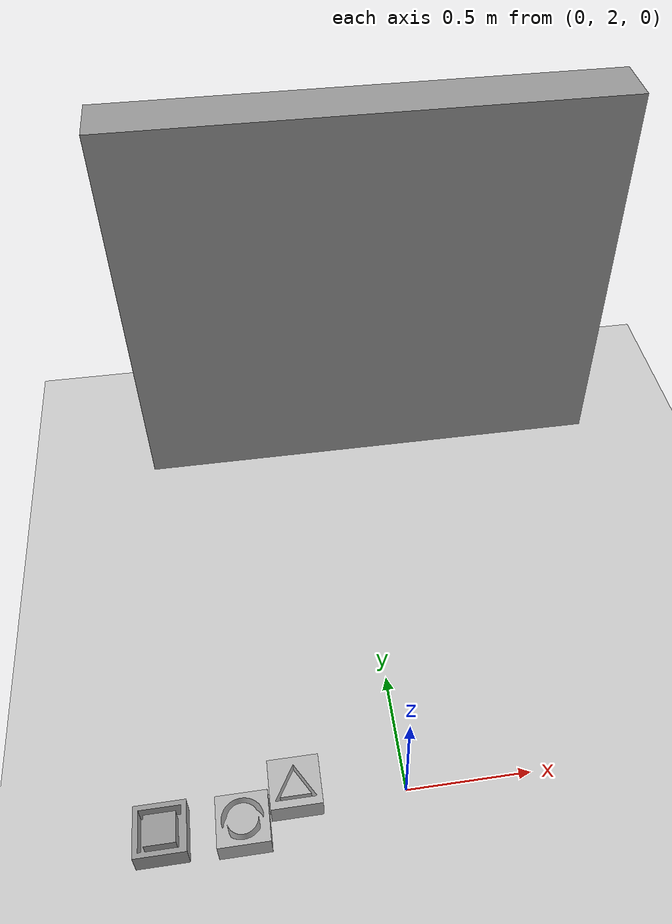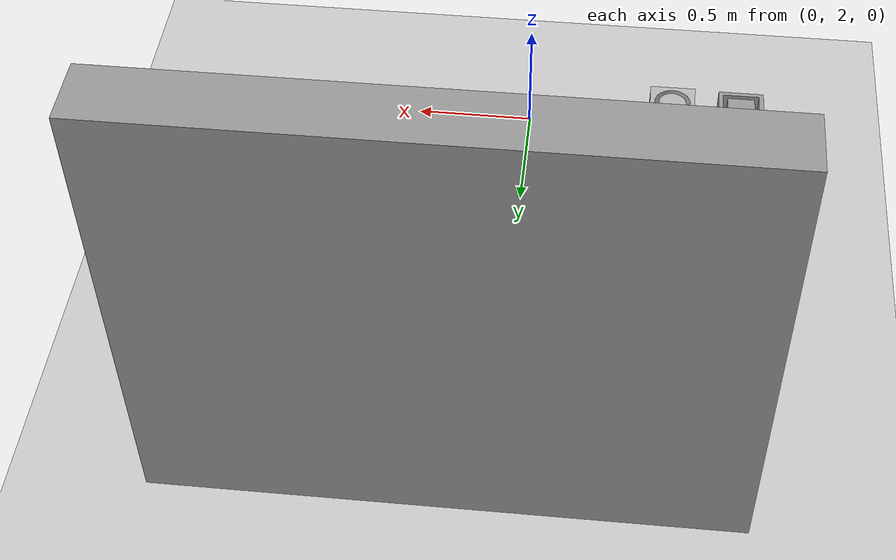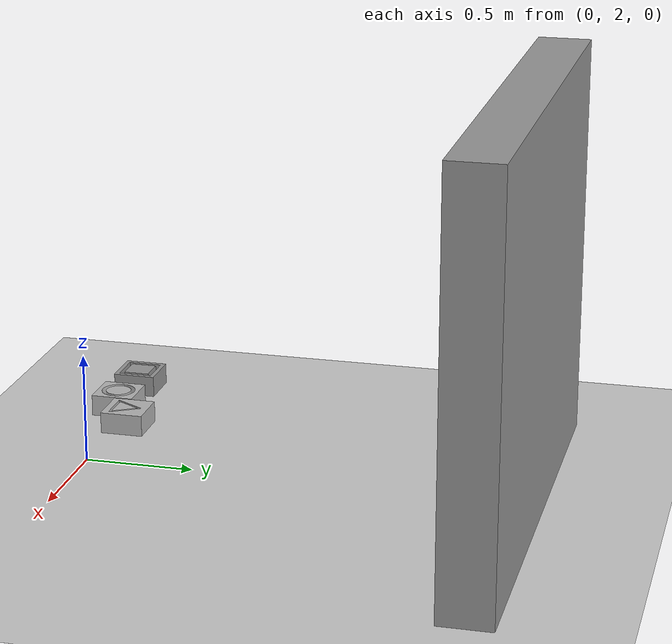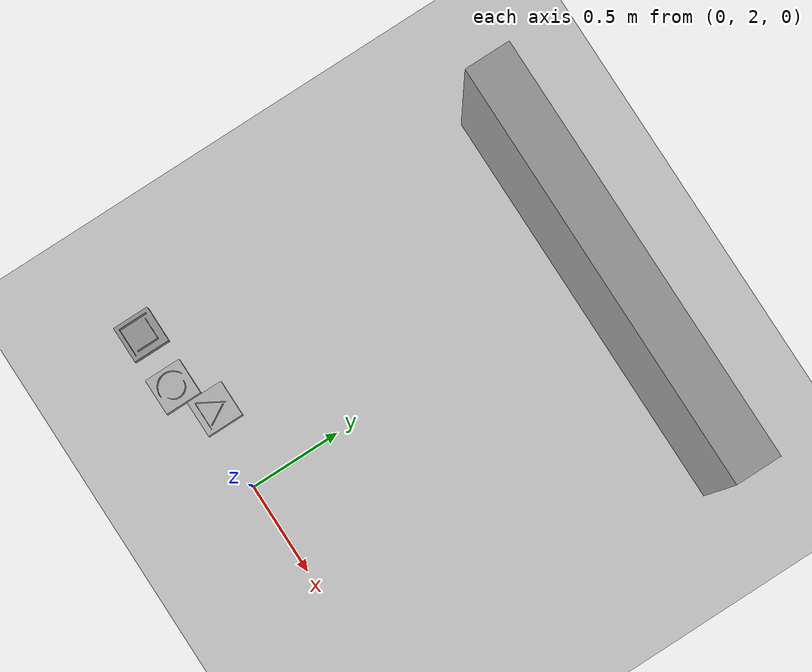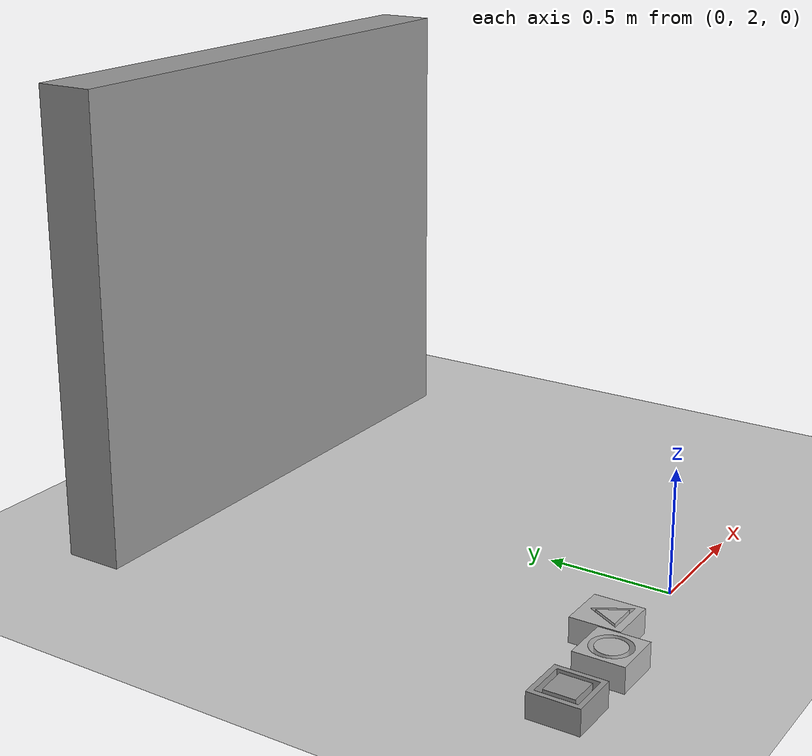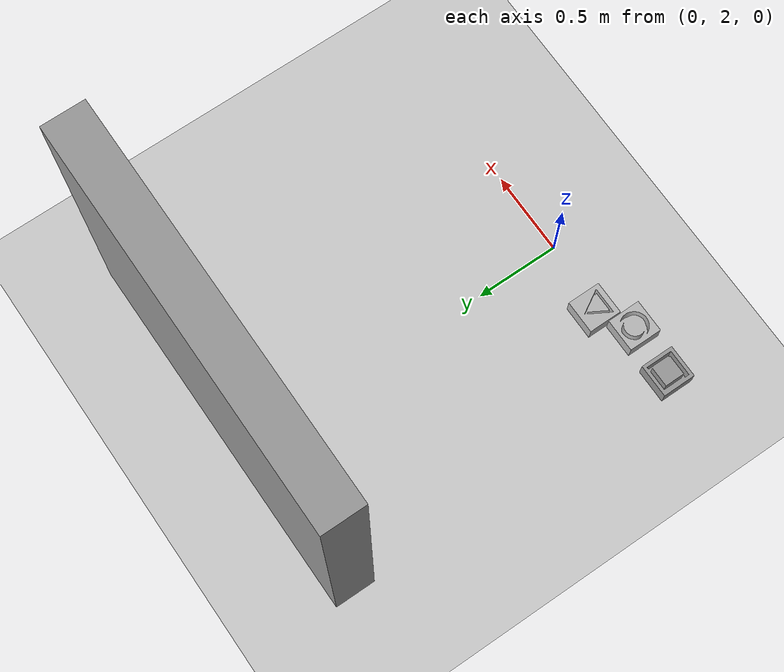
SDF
<sdf version="1.6">
 <world name="default">
  <light name="sun" type="directional">
   <pose>0 0 10 0 -0 0</pose>
   <diffuse>0.8 0.8 0.8 1</diffuse>
   <specular>0.2 0.2 0.2 1</specular>
   <attenuation>
    <range>1000</range>
    <constant>0.9</constant>
    <linear>0.01</linear>
    <quadratic>0.001</quadratic>
   </attenuation>
   <direction>-0.5 0.1 -0.9</direction>
  </light>
  <model name="ground_plane">
   <static>1</static>
   <link name="link">
    <collision name="collision">
     <geometry><plane><normal>0 0 1</normal><size>100 100</size></plane></geometry>
     <surface>
      <contact><collide_bitmask>65535</collide_bitmask></contact>
      <friction><ode><mu>100</mu><mu2>50</mu2></ode></friction>
     </surface>
    </collision>
    <visual name="visual">
     <cast_shadows>0</cast_shadows>
     <geometry><plane><normal>0 0 1</normal><size>100 100</size></plane></geometry>
     <material>
      <script><uri>file://media/materials/scripts/gazebo.material</uri><name>Gazebo/Grey</name></script>
     </material>
    </visual>
   </link>
  </model>
  <gravity>0 0 -9.8</gravity>
  <magnetic_field>6e-06 2.3e-05 -4.2e-05</magnetic_field>
  <atmosphere type="adiabatic"/>
  <physics name="default_physics" default="0" type="ode">
   <max_step_size>0.001</max_step_size>
   <real_time_factor>1</real_time_factor>
   <real_time_update_rate>1000</real_time_update_rate>
  </physics>
  <scene><ambient>0.4 0.4 0.4 1</ambient><background>0.7 0.7 0.7 1</background><shadows>1</shadows></scene>
  <audio><device>default</device></audio>
  <spherical_coordinates>
   <surface_model>EARTH_WGS84</surface_model>
   <latitude_deg>0</latitude_deg>
   <longitude_deg>0</longitude_deg>
   <elevation>0</elevation>
   <heading_deg>0</heading_deg>
  </spherical_coordinates>
  <light name="user_directional_light_0" type="directional">
   <pose>-0.856808 7.35485 1 0 -0 0</pose>
   <diffuse>0.5 0.5 0.5 1</diffuse>
   <specular>0.1 0.1 0.1 1</specular>
   <direction>0.1 0.1 -0.9</direction>
   <attenuation>
    <range>20</range>
    <constant>0.5</constant>
    <linear>0.01</linear>
    <quadratic>0.001</quadratic>
   </attenuation>
  </light>
  <model name="bigsquare">
   <pose>-0.95064 1.94493 -1e-05 -1e-06 -1e-06 0</pose>
   <static>0</static>
   <link name="link">
    <inertial>
     <mass>1</mass>
     <inertia><ixx>1</ixx><ixy>0</ixy><ixz>0</ixz><iyy>1</iyy><iyz>0</iyz><izz>1</izz></inertia>
    </inertial>
    <collision name="collision">
     <geometry><mesh><uri>model://bigSquare/BigSquare.stl</uri><scale>0.001 0.001 0.001</scale></mesh></geometry>
    </collision>
    <visual name="visual">
     <geometry><mesh><uri>model://bigSquare/BigSquare.stl</uri><scale>0.001 0.001 0.001</scale></mesh></geometry>
     <material>
      <script><uri>file://media/materials/scripts/gazebo.material</uri><name>Gazebo/Grey</name></script>
     </material>
    </visual>
   </link>
  </model>
  <model name="big_circle_path">
   <pose>-0.760319 1.93758 0 0 -0 0</pose>
   <static>1</static>
   <link name="link">
    <inertial>
     <mass>1</mass>
     <inertia><ixx>0.083</ixx><ixy>0</ixy><ixz>0</ixz><iyy>0.083</iyy><iyz>0</iyz><izz>0.083</izz></inertia>
    </inertial>
    <collision name="collision">
     <geometry><mesh><uri>model://bigCircle/BigCircle.stl</uri><scale>0.001 0.001 0.001</scale></mesh></geometry>
    </collision>
    <visual name="visual">
     <geometry><mesh><uri>model://bigCircle/BigCircle.stl</uri><scale>0.001 0.001 0.001</scale></mesh></geometry>
    </visual>
   </link>
  </model>
  <model name="big_triangle_path">
   <pose>-0.437705 2.0534 0 0 -0 0</pose>
   <static>1</static>
   <link name="link">
    <inertial>
     <mass>1</mass>
     <inertia><ixx>0.083</ixx><ixy>0</ixy><ixz>0</ixz><iyy>0.083</iyy><iyz>0</iyz><izz>0.083</izz></inertia>
    </inertial>
    <collision name="collision">
     <geometry>
      <mesh><uri>model://bigTriangle/BigTriangle.stl</uri><scale>0.001 0.001 0.001</scale></mesh>
     </geometry>
    </collision>
    <visual name="visual">
     <geometry>
      <mesh><uri>model://bigTriangle/BigTriangle.stl</uri><scale>0.001 0.001 0.001</scale></mesh>
     </geometry>
    </visual>
   </link>
  </model>
  <model name="unit_box">
   <pose>0.146378 3.9865 0.92733 -2e-06 0 0</pose>
   <link name="link">
    <inertial>
     <mass>1</mass>
     <inertia>
      <ixx>0.166667</ixx>
      <ixy>0</ixy>
      <ixz>0</ixz>
      <iyy>0.166667</iyy>
      <iyz>0</iyz>
      <izz>0.166667</izz>
     </inertia>
    </inertial>
    <collision name="collision"><geometry><box><size>2.23069 0.23838 1.85466</size></box></geometry></collision>
    <visual name="visual">
     <geometry><box><size>2.23069 0.23838 1.85466</size></box></geometry>
     <material>
      <script><name>Gazebo/Grey</name><uri>file://media/materials/scripts/gazebo.material</uri></script>
     </material>
    </visual>
   </link>
  </model>
 </world>
</sdf>
